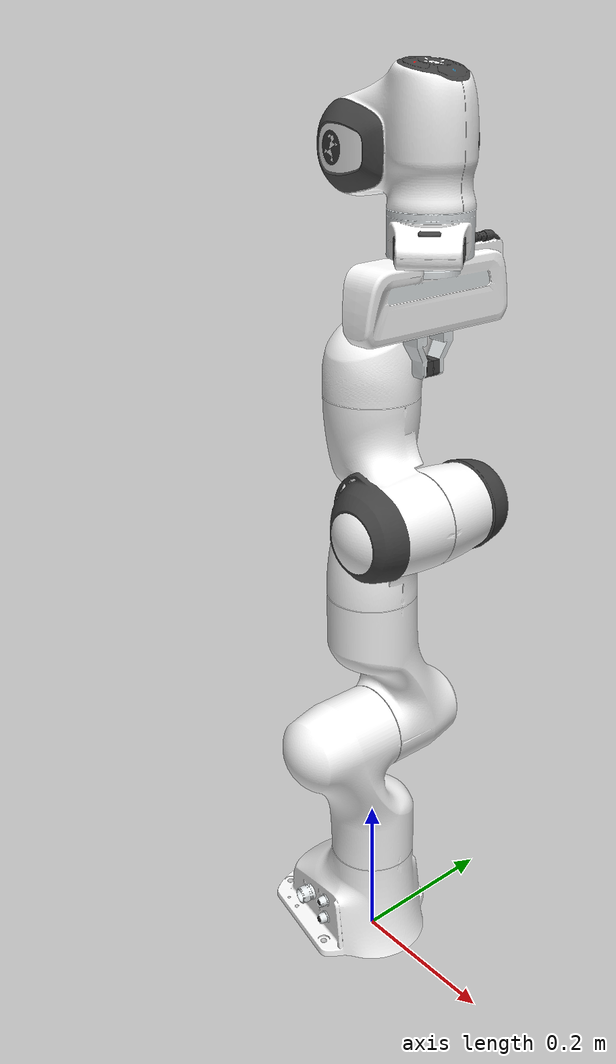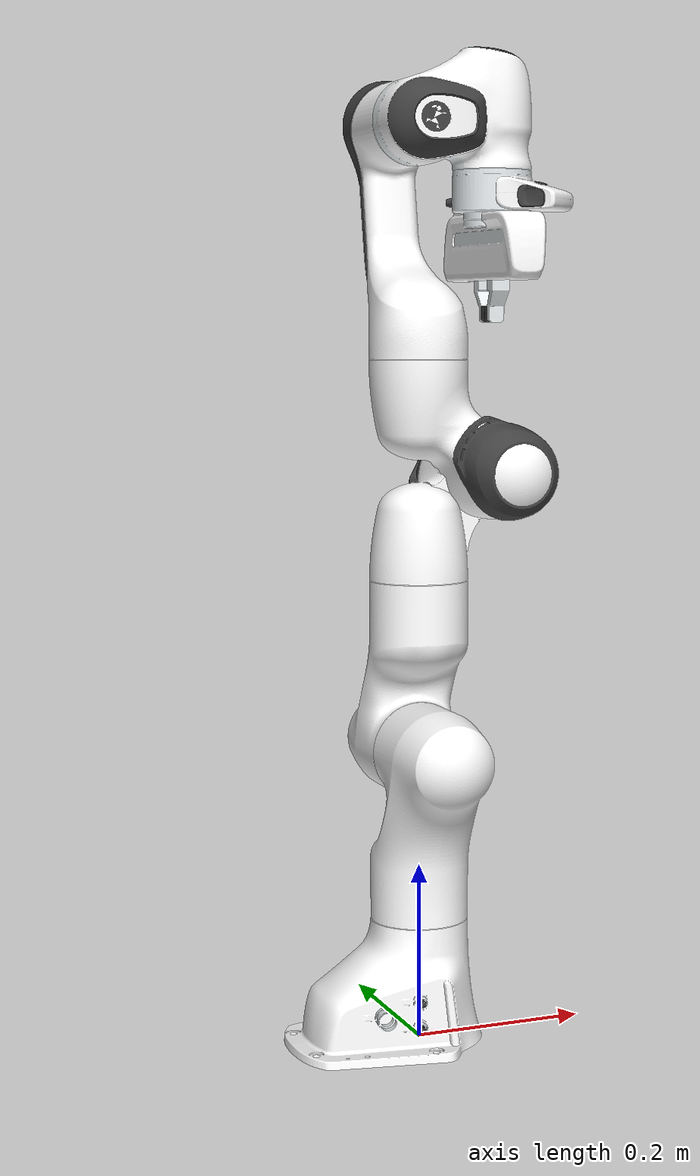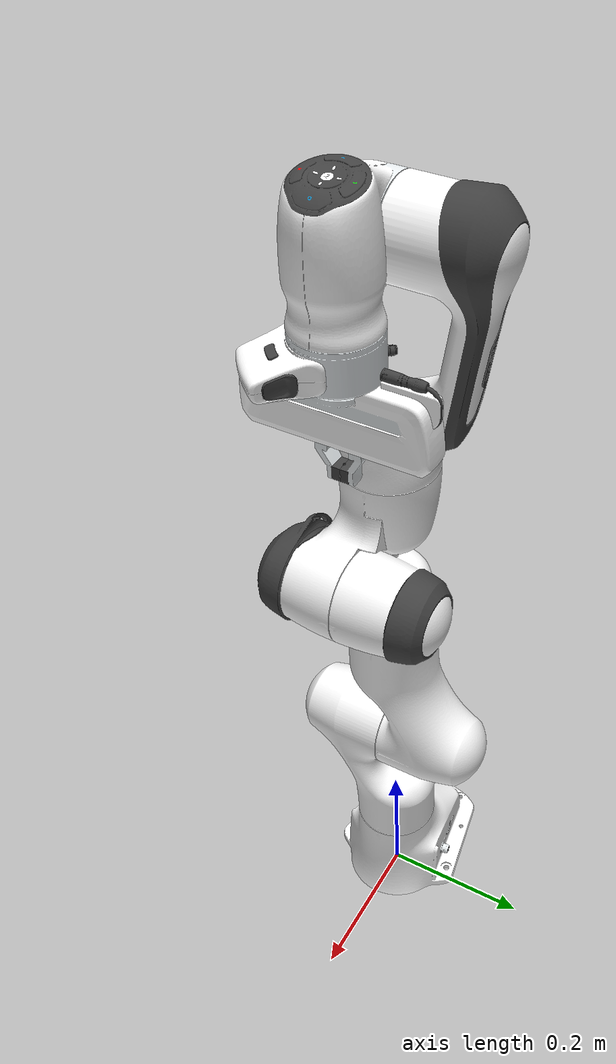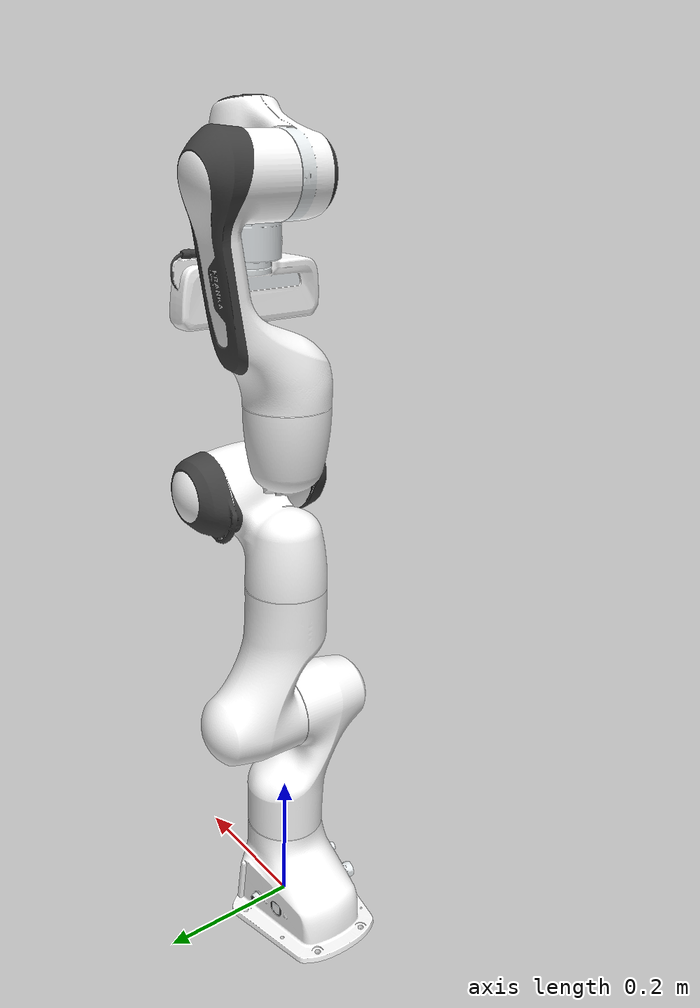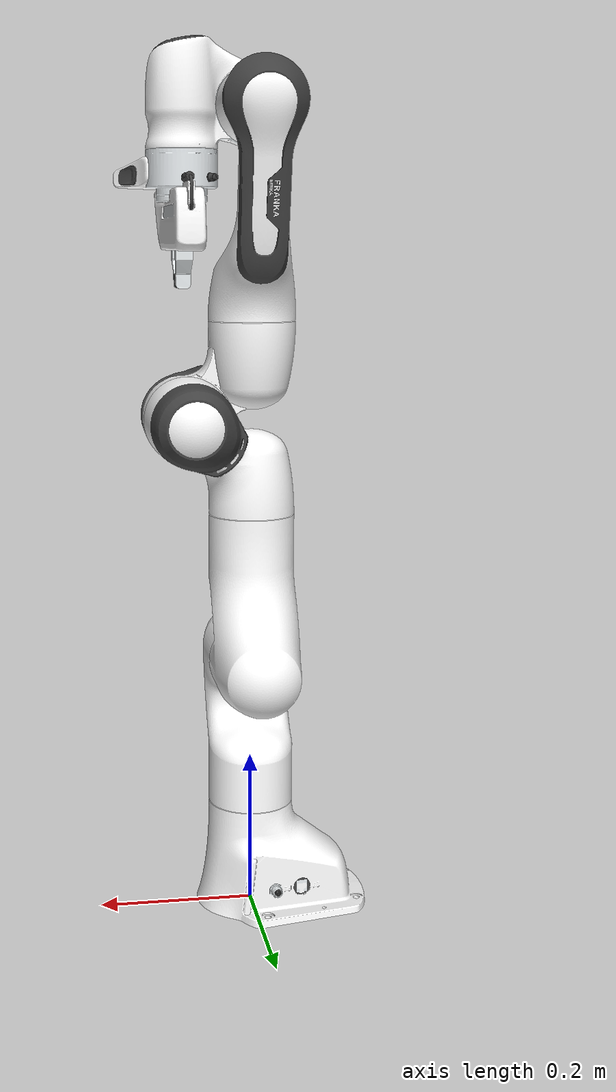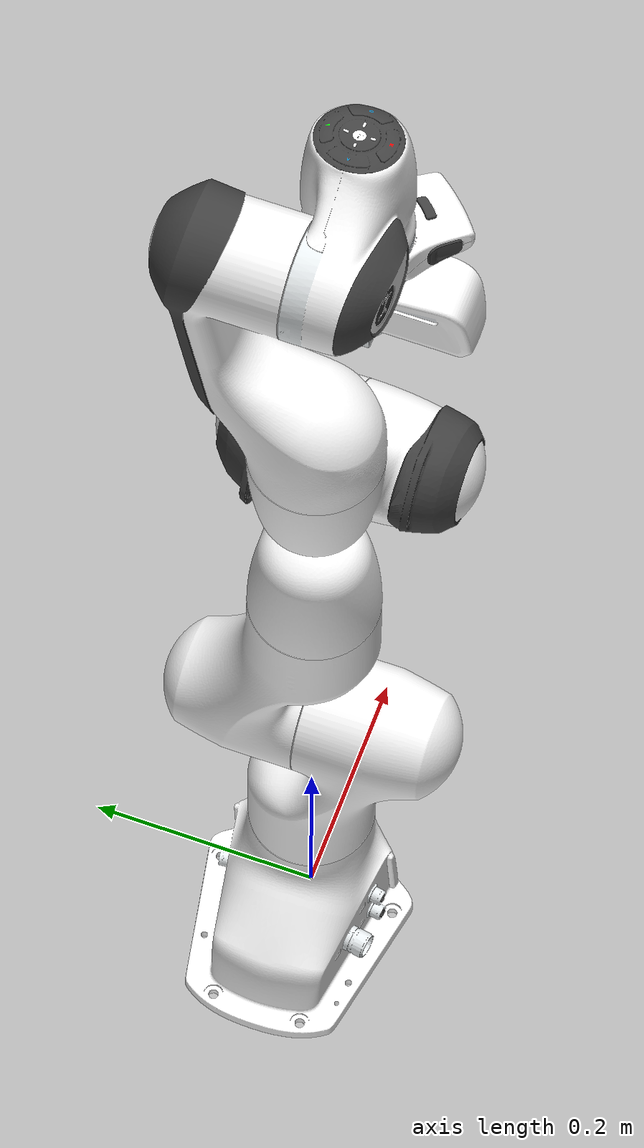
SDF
<?xml version="1.0"?>
<sdf version="1.7">
    <model name="panda">

        <!-- Fix To World -->
        <joint name="panda_joint_world" type="fixed">
            <parent>world</parent>
            <child>panda_link0</child>
        </joint>

        <!-- Arm Links -->
        <link name="panda_link0">
            <visual name="panda_link0_visual">
                <geometry>
                    <mesh>
                        <uri>model://panda/meshes/visual/link0.dae</uri>
                    </mesh>
                </geometry>
            </visual>
            <collision name="panda_link0_collision">
                <geometry>
                    <mesh>
                        <uri>model://panda/meshes/collision/link0.stl</uri>
                    </mesh>
                </geometry>
            </collision>
            <inertial>
                <pose>-0.025566 -2.88e-05 0.057332 0 0 0</pose>
                <mass>2.92</mass>
                <inertia>
                    <ixx>0.00782229414331</ixx>
                    <ixy>-1.56191622996e-05</ixy>
                    <ixz>-0.00126005738123</ixz>
                    <iyy>0.0109027971813</iyy>
                    <iyz>1.08233858202e-05</iyz>
                    <izz>0.0102355503949</izz>
                </inertia>
            </inertial>
        </link>

        <link name="panda_link1">
            <pose relative_to="panda_joint1">0 0 0 0 0 0</pose>
            <visual name="panda_link1_visual">
                <geometry>
                    <mesh>
                        <uri>model://panda/meshes/visual/link1.dae</uri>
                    </mesh>
                </geometry>
            </visual>
            <collision name="panda_link1_collision">
                <geometry>
                    <mesh>
                        <uri>model://panda/meshes/collision/link1.stl</uri>
                    </mesh>
                </geometry>
            </collision>
            <inertial>
                <pose>0 -0.0324958 -0.0675818 0 0 0</pose>
                <mass>2.74</mass>
                <inertia>
                    <ixx>0.0180416958283</ixx>
                    <ixy>0</ixy>
                    <ixz>0</ixz>
                    <iyy>0.0159136071891</iyy>
                    <iyz>0.0046758424612</iyz>
                    <izz>0.00620690827127</izz>
                </inertia>
            </inertial>
        </link>

        <link name="panda_link2">
            <pose relative_to="panda_joint2">0 0 0 0 0 0</pose>
            <visual name="panda_link2_visual">
                <geometry>
                    <mesh>
                        <uri>model://panda/meshes/visual/link2.dae</uri>
                    </mesh>
                </geometry>
            </visual>
            <collision name="panda_link2_collision">
                <geometry>
                    <mesh>
                        <uri>model://panda/meshes/collision/link2.stl</uri>
                    </mesh>
                </geometry>
            </collision>
            <inertial>
                <pose>0 -0.06861 0.0322285 0 0 0</pose>
                <mass>2.74</mass>
                <inertia>
                    <ixx>0.0182856182281</ixx>
                    <ixy>0</ixy>
                    <ixz>0</ixz>
                    <iyy>0.00621358421175</iyy>
                    <iyz>-0.00472844221905</iyz>
                    <izz>0.0161514346309</izz>
                </inertia>
            </inertial>
        </link>

        <link name="panda_link3">
            <pose relative_to="panda_joint3">0 0 0 0 0 0</pose>
            <visual name="panda_link3_visual">
                <geometry>
                    <mesh>
                        <uri>model://panda/meshes/visual/link3.dae</uri>
                    </mesh>
                </geometry>
            </visual>
            <collision name="panda_link3_collision">
                <geometry>
                    <mesh>
                        <uri>model://panda/meshes/collision/link3.stl</uri>
                    </mesh>
                </geometry>
            </collision>
            <inertial>
                <pose>0.0469893 0.0316374 -0.031704 0 0 0</pose>
                <mass>2.38</mass>
                <inertia>
                    <ixx>0.00771376630908</ixx>
                    <ixy>-0.00248490625138</ixy>
                    <ixz>-0.00332147581033</ixz>
                    <iyy>0.00989108008727</iyy>
                    <iyz>-0.00217796151484</iyz>
                    <izz>0.00811723558464</izz>
                </inertia>
            </inertial>
        </link>

        <link name="panda_link4">
            <pose relative_to="panda_joint4">0 0 0 0 0 0</pose>
            <visual name="panda_link4_visual">
                <geometry>
                    <mesh>
                        <uri>model://panda/meshes/visual/link4.dae</uri>
                    </mesh>
                </geometry>
            </visual>
            <collision name="panda_link4_collision">
                <geometry>
                    <mesh>
                        <uri>model://panda/meshes/collision/link4.stl</uri>
                    </mesh>
                </geometry>
            </collision>
            <inertial>
                <pose>-0.0360446 0.0336853 0.031882 0 0 0</pose>
                <mass>2.38</mass>
                <inertia>
                    <ixx>0.00799663881132</ixx>
                    <ixy>0.00347095570217</ixy>
                    <ixz>-0.00241222942995</ixz>
                    <iyy>0.00825390705278</iyy>
                    <iyz>0.00235774044121</iyz>
                    <izz>0.0102515004345</izz>
                </inertia>
            </inertial>
        </link>

        <link name="panda_link5">
            <pose relative_to="panda_joint5">0 0 0 0 0 0</pose>
            <visual name="panda_link5_visual">
                <geometry>
                    <mesh>
                        <uri>model://panda/meshes/visual/link5.dae</uri>
                    </mesh>
                </geometry>
            </visual>
            <collision name="panda_link5_collision">
                <geometry>
                    <mesh>
                        <uri>model://panda/meshes/collision/link5.stl</uri>
                    </mesh>
                </geometry>
            </collision>
            <inertial>
                <pose>0 0.0610427 -0.104176 0 0 0</pose>
                <mass>2.74</mass>
                <inertia>
                    <ixx>0.030371374513</ixx>
                    <ixy>6.50283587108e-07</ixy>
                    <ixz>-1.05129179916e-05</ixz>
                    <iyy>0.0288752887402</iyy>
                    <iyz>-0.00775653445787</iyz>
                    <izz>0.00444134056164</izz>
                </inertia>
            </inertial>
        </link>

        <link name="panda_link6">
            <pose relative_to="panda_joint6">0 0 0 0 0 0</pose>
            <visual name="panda_link6_visual">
                <geometry>
                    <mesh>
                        <uri>model://panda/meshes/visual/link6.dae</uri>
                    </mesh>
                </geometry>
            </visual>
            <collision name="panda_link6_collision">
                <geometry>
                    <mesh>
                        <uri>model://panda/meshes/collision/link6.stl</uri>
                    </mesh>
                </geometry>
            </collision>
            <inertial>
                <pose>0.0510509 0.009108 0.0106343 0 0 0</pose>
                <mass>1.55</mass>
                <inertia>
                    <ixx>0.00303336450376</ixx>
                    <ixy>-0.000437276865508</ixy>
                    <ixz>0.000629257294877</ixz>
                    <iyy>0.00404479911567</iyy>
                    <iyz>0.000130472021025</iyz>
                    <izz>0.00558234286039</izz>
                </inertia>
            </inertial>
        </link>

        <link name="panda_link7">
            <pose relative_to="panda_joint7">0 0 0 0 0 0</pose>
            <visual name="panda_link7_visual">
                <geometry>
                    <mesh>
                        <uri>model://panda/meshes/visual/link7.dae</uri>
                    </mesh>
                </geometry>
            </visual>
            <collision name="panda_link7_collision">
                <geometry>
                    <mesh>
                        <uri>model://panda/meshes/collision/link7.stl</uri>
                    </mesh>
                </geometry>
            </collision>
            <inertial>
                <pose>0.0109695 0.0107965 0.0650411 0 0 0</pose>
                <mass>0.54</mass>
                <inertia>
                    <ixx>0.000888868887021</ixx>
                    <ixy>-0.00012239074652</ixy>
                    <ixz>3.98699829666e-05</ixz>
                    <iyy>0.000888001373233</iyy>
                    <iyz>-9.33825115206e-05</iyz>
                    <izz>0.0007176834609</izz>
                </inertia>
            </inertial>
        </link>

        <!-- Arm Joints -->
        <joint name="panda_joint1" type="revolute">
            <pose relative_to="panda_link0">0 0 0.333 0 0 0</pose>
            <parent>panda_link0</parent>
            <child>panda_link1</child>
            <axis>
                <xyz>0 0 1</xyz>
                <limit>
                    <effort>87</effort>
                    <lower>-2.897246558310587</lower>
                    <upper>2.897246558310587</upper>
                    <velocity>2.617993877991494</velocity>
                </limit>
            </axis>
        </joint>

        <joint name="panda_joint2" type="revolute">
            <pose relative_to="panda_link1">0 0 0 -1.570796326794897 0 0</pose>
            <parent>panda_link1</parent>
            <child>panda_link2</child>
            <axis>
                <xyz>0 0 1</xyz>
                <limit>
                    <effort>87</effort>
                    <lower>-1.762782544514273</lower>
                    <upper>1.762782544514273</upper>
                    <velocity>2.617993877991494</velocity>
                </limit>
            </axis>
        </joint>

        <joint name="panda_joint3" type="revolute">
            <pose relative_to="panda_link2">0 -0.316 0 1.570796326794897 0 0</pose>
            <parent>panda_link2</parent>
            <child>panda_link3</child>
            <axis>
                <xyz>0 0 1</xyz>
                <limit>
                    <effort>87</effort>
                    <lower>-2.897246558310587</lower>
                    <upper>2.897246558310587</upper>
                    <velocity>2.617993877991494</velocity>
                </limit>
            </axis>
        </joint>

        <joint name="panda_joint4" type="revolute">
            <pose relative_to="panda_link3">0.0825 0 0 1.570796326794897 0 0</pose>
            <parent>panda_link3</parent>
            <child>panda_link4</child>
            <axis>
                <xyz>0 0 1</xyz>
                <limit>
                    <effort>87</effort>
                    <lower>-3.07177948351002</lower>
                    <upper>-0.06981317007977318</upper>
                    <velocity>2.617993877991494</velocity>
                </limit>
            </axis>
        </joint>

        <joint name="panda_joint5" type="revolute">
            <pose relative_to="panda_link4">-0.0825 0.384 0 -1.570796326794897 0 0</pose>
            <parent>panda_link4</parent>
            <child>panda_link5</child>
            <axis>
                <xyz>0 0 1</xyz>
                <limit>
                    <effort>12</effort>
                    <lower>-2.897246558310587</lower>
                    <upper>2.897246558310587</upper>
                    <velocity>3.141592653589793</velocity>
                </limit>
            </axis>
        </joint>

        <joint name="panda_joint6" type="revolute">
            <pose relative_to="panda_link5">0 0 0 1.570796326794897 0 0</pose>
            <parent>panda_link5</parent>
            <child>panda_link6</child>
            <axis>
                <xyz>0 0 1</xyz>
                <limit>
                    <effort>12</effort>
                    <lower>-0.0174532925199433</lower>
                    <upper>3.752457891787809</upper>
                    <velocity>3.141592653589793</velocity>
                </limit>
            </axis>
        </joint>

        <joint name="panda_joint7" type="revolute">
            <pose relative_to="panda_link6">0.088 0 0 1.570796326794897 0 0</pose>
            <parent>panda_link6</parent>
            <child>panda_link7</child>
            <axis>
                <xyz>0 0 1</xyz>
                <limit>
                    <effort>12</effort>
                    <lower>-2.897246558310587</lower>
                    <upper>2.897246558310587</upper>
                    <velocity>3.141592653589793</velocity>
                </limit>
            </axis>
        </joint>

        <!-- Arm-Hand Fixed Joint -->
        <joint name="panda_hand_joint" type="fixed">
            <pose relative_to="panda_link7">0 0 0.107 0 0 0</pose>
            <parent>panda_link7</parent>
            <child>panda_hand</child>
        </joint>

        <!-- Hand Links -->
        <link name="panda_hand">
            <pose relative_to="panda_hand_joint">0 0 0 0 0 0</pose>
            <visual name="panda_hand_visual">
                <pose>0 0 0 0 0 0</pose>
                <geometry>
                    <mesh>
                        <uri>model://panda/meshes/visual/hand.dae</uri>
                    </mesh>
                </geometry>
            </visual>
            <collision name="panda_hand_collision">
                <pose>0 0 0 0 0 0</pose>
                <geometry>
                    <mesh>
                        <uri>model://panda/meshes/collision/hand.stl</uri>
                    </mesh>
                </geometry>
            </collision>
            <inertial>
                <pose>0 0.0015244 0.0275912 0 0 0</pose>
                <mass>0.73</mass>
                <inertia>
                    <ixx>0.00278560230025</ixx>
                    <ixy>0</ixy>
                    <ixz>0</ixz>
                    <iyy>0.000400033405336</iyy>
                    <iyz>0</iyz>
                    <izz>0.00256378041832</izz>
                </inertia>
            </inertial>
        </link>

        <link name="panda_leftfinger">
            <pose relative_to="panda_finger_joint1">0 0 0 0 0 0</pose>
            <visual name="panda_leftfinger_visual">
                <geometry>
                    <mesh>
                        <uri>model://panda/meshes/visual/finger.dae</uri>
                    </mesh>
                </geometry>
            </visual>
            <collision name="panda_leftfinger_collision">
                <geometry>
                    <mesh>
                        <uri>model://panda/meshes/collision/finger.stl</uri>
                    </mesh>
                </geometry>
            </collision>
            <inertial>
                <pose>0 0.0145644 0.0227941 0 0 0</pose>
                <mass>0.1</mass>
                <inertia>
                    <ixx>3.01220925051e-05</ixx>
                    <ixy>0</ixy>
                    <ixz>0</ixz>
                    <iyy>2.95873808038e-05</iyy>
                    <iyz>0</iyz>
                    <izz>6.95125211657e-06</izz>
                </inertia>
            </inertial>
        </link>

        <link name="panda_rightfinger">
            <pose relative_to="panda_finger_joint2">0 0 0 0 0 0</pose>
            <visual name="panda_rightfinger_visual">
                <pose>0 0 0 0 0 3.141592653589793</pose>
                <geometry>
                    <mesh>
                        <uri>model://panda/meshes/visual/finger.dae</uri>
                    </mesh>
                </geometry>
            </visual>
            <collision name="panda_rightfinger_collision">
                <pose>0 0 0 0 0 3.141592653589793</pose>
                <geometry>
                    <mesh>
                        <uri>model://panda/meshes/collision/finger.stl</uri>
                    </mesh>
                </geometry>
            </collision>
            <inertial>
                <pose>0 0.0145644 0.0227941 0 0 3.141592653589793</pose>
                <mass>0.1</mass>
                <inertia>
                    <ixx>3.01220925051e-05</ixx>
                    <ixy>0</ixy>
                    <ixz>0</ixz>
                    <iyy>2.95873808038e-05</iyy>
                    <iyz>0</iyz>
                    <izz>6.95125211657e-06</izz>
                </inertia>
            </inertial>
        </link>

        <!-- Finger Joints -->
        <joint name="panda_finger_joint1" type="prismatic">
            <pose relative_to="panda_hand">0 0 0.0584 0 0 0</pose>
            <parent>panda_hand</parent>
            <child>panda_leftfinger</child>
            <axis>
                <xyz>0 1 0</xyz>
                <limit>
                    <effort>20</effort>
                    <lower>0</lower>
                    <upper>0.04</upper>
                    <velocity>0.2</velocity>
                </limit>
            </axis>
        </joint>

        <joint name="panda_finger_joint2" type="prismatic">
            <pose relative_to="panda_hand">0 0 0.0584 0 0 0</pose>
            <parent>panda_hand</parent>
            <child>panda_rightfinger</child>
            <axis>
                <xyz>0 -1 0</xyz>
                <limit>
                    <effort>20</effort>
                    <lower>0</lower>
                    <upper>0.04</upper>
                    <velocity>0.2</velocity>
                </limit>
            </axis>
        </joint>

        <!-- End-effector -->
        <link name="panda_link8">
            <pose relative_to="end_effector_frame_fixed_joint">0 0 0 0 0 0</pose>
        </link>
        <joint name="end_effector_frame_fixed_joint" type="fixed">
            <pose relative_to="panda_hand">0 0 0.103 0 0 0</pose>
            <parent>panda_hand</parent>
            <child>panda_link8</child>
        </joint>

    </model>
</sdf>
